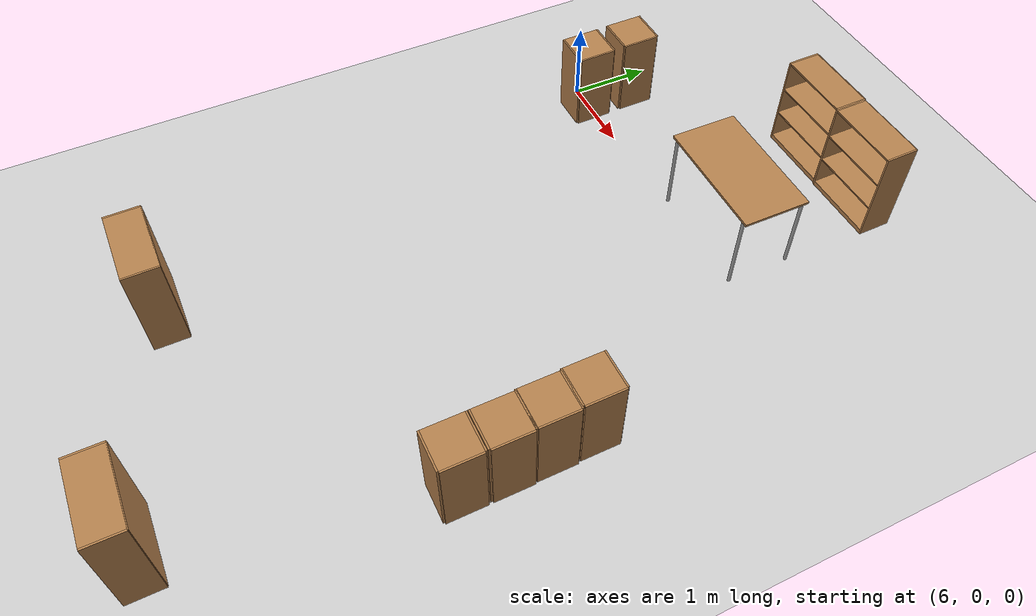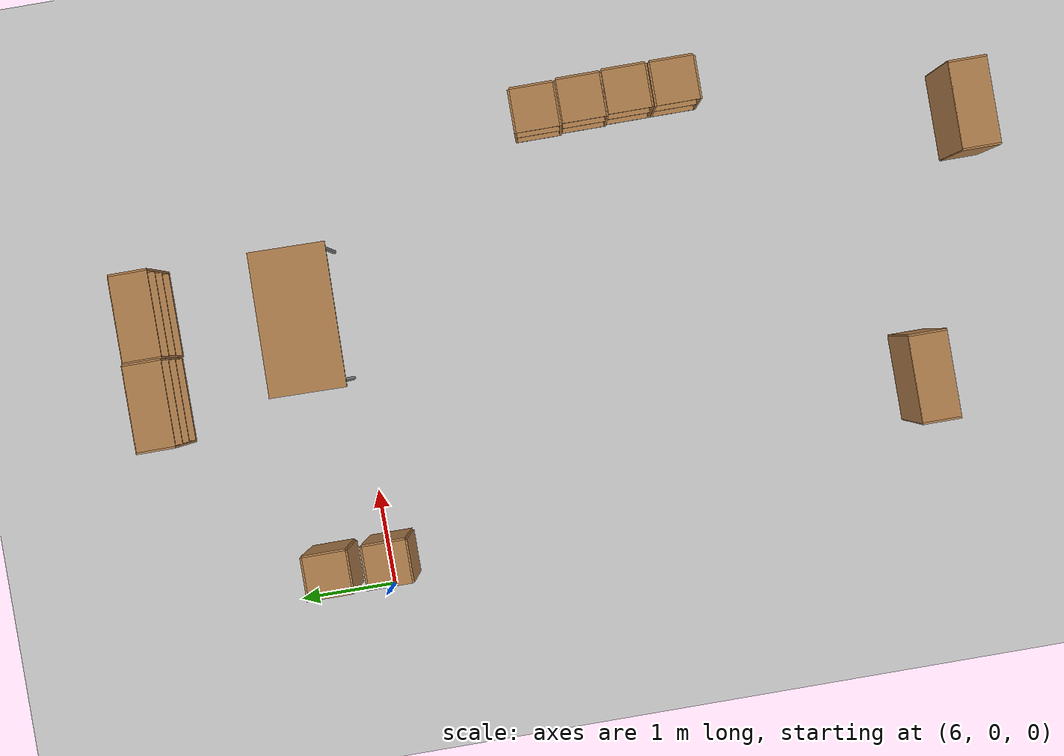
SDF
<sdf version="1.6">
 <world name="default">
  <model name="ground_plane">
   <static>1</static>
   <link name="link">
    <collision name="collision">
     <geometry><plane><normal>0 0 1</normal><size>100 100</size></plane></geometry>
     <surface><friction><ode><mu>100</mu><mu2>50</mu2></ode></friction></surface>
    </collision>
    <visual name="visual">
     <cast_shadows>0</cast_shadows>
     <geometry><plane><normal>0 0 1</normal><size>100 100</size></plane></geometry>
     <material>
      <script><uri>file://media/materials/scripts/gazebo.material</uri><name>Gazebo/Grey</name></script>
     </material>
    </visual>
   </link>
  </model>
  <model name="table_2">
   <static>1</static>
   <link name="link">
    <collision name="surface">
     <pose>0 0 1 0 -0 0</pose>
     <geometry><box><size>1.5 0.8 0.03</size></box></geometry>
     <surface><friction><ode><mu>0.6</mu><mu2>0.6</mu2></ode></friction></surface>
    </collision>
    <visual name="visual1">
     <pose>0 0 1 0 -0 0</pose>
     <geometry><box><size>1.5 0.8 0.03</size></box></geometry>
     <material>
      <script><uri>file://media/materials/scripts/gazebo.material</uri><name>Gazebo/Wood</name></script>
     </material>
    </visual>
    <collision name="front_left_leg">
     <pose>0.68 0.38 0.5 0 -0 0</pose>
     <geometry><cylinder><radius>0.02</radius><length>1</length></cylinder></geometry>
    </collision>
    <visual name="front_left_leg">
     <pose>0.68 0.38 0.5 0 -0 0</pose>
     <geometry><cylinder><radius>0.02</radius><length>1</length></cylinder></geometry>
     <material>
      <script><uri>file://media/materials/scripts/gazebo.material</uri><name>Gazebo/Grey</name></script>
     </material>
    </visual>
    <collision name="front_right_leg">
     <pose>0.68 -0.38 0.5 0 -0 0</pose>
     <geometry><cylinder><radius>0.02</radius><length>1</length></cylinder></geometry>
    </collision>
    <visual name="front_right_leg">
     <pose>0.68 -0.38 0.5 0 -0 0</pose>
     <geometry><cylinder><radius>0.02</radius><length>1</length></cylinder></geometry>
     <material>
      <script><uri>file://media/materials/scripts/gazebo.material</uri><name>Gazebo/Grey</name></script>
     </material>
    </visual>
    <collision name="back_right_leg">
     <pose>-0.68 -0.38 0.5 0 -0 0</pose>
     <geometry><cylinder><radius>0.02</radius><length>1</length></cylinder></geometry>
    </collision>
    <visual name="back_right_leg">
     <pose>-0.68 -0.38 0.5 0 -0 0</pose>
     <geometry><cylinder><radius>0.02</radius><length>1</length></cylinder></geometry>
     <material>
      <script><uri>file://media/materials/scripts/gazebo.material</uri><name>Gazebo/Grey</name></script>
     </material>
    </visual>
    <collision name="back_left_leg">
     <pose>-0.68 0.38 0.5 0 -0 0</pose>
     <geometry><cylinder><radius>0.02</radius><length>1</length></cylinder></geometry>
    </collision>
    <visual name="back_left_leg">
     <pose>-0.68 0.38 0.5 0 -0 0</pose>
     <geometry><cylinder><radius>0.02</radius><length>1</length></cylinder></geometry>
     <material>
      <script><uri>file://media/materials/scripts/gazebo.material</uri><name>Gazebo/Grey</name></script>
     </material>
    </visual>
   </link>
   <pose>8.91481 0.43197 0 0 -0 3.12562</pose>
  </model>
  <model name="bookshelf_clone_clone">
   <static>1</static>
   <link name="link">
    <inertial><mass>1</mass></inertial>
    <collision name="back">
     <pose>0 0.005 0.6 0 -0 0</pose>
     <geometry><box><size>0.9 0.01 1.2</size></box></geometry>
    </collision>
    <visual name="visual1">
     <pose>0 0.005 0.6 0 -0 0</pose>
     <geometry><box><size>0.9 0.01 1.2</size></box></geometry>
     <material>
      <script><uri>file://media/materials/scripts/gazebo.material</uri><name>Gazebo/Wood</name></script>
     </material>
    </visual>
    <collision name="left_side">
     <pose>0.45 -0.195 0.6 0 -0 0</pose>
     <geometry><box><size>0.02 0.4 1.2</size></box></geometry>
    </collision>
    <visual name="visual2">
     <pose>0.45 -0.195 0.6 0 -0 0</pose>
     <geometry><box><size>0.02 0.4 1.2</size></box></geometry>
     <material>
      <script><uri>file://media/materials/scripts/gazebo.material</uri><name>Gazebo/Wood</name></script>
     </material>
    </visual>
    <collision name="right_side">
     <pose>-0.45 -0.195 0.6 0 -0 0</pose>
     <geometry><box><size>0.02 0.4 1.2</size></box></geometry>
    </collision>
    <visual name="visual3">
     <pose>-0.45 -0.195 0.6 0 -0 0</pose>
     <geometry><box><size>0.02 0.4 1.2</size></box></geometry>
     <material>
      <script><uri>file://media/materials/scripts/gazebo.material</uri><name>Gazebo/Wood</name></script>
     </material>
    </visual>
    <collision name="bottom">
     <pose>0 -0.195 0.03 0 -0 0</pose>
     <geometry><box><size>0.88 0.4 0.06</size></box></geometry>
    </collision>
    <visual name="visual4">
     <pose>0 -0.195 0.03 0 -0 0</pose>
     <geometry><box><size>0.88 0.4 0.06</size></box></geometry>
     <material>
      <script><uri>file://media/materials/scripts/gazebo.material</uri><name>Gazebo/Wood</name></script>
     </material>
    </visual>
    <collision name="top">
     <pose>0 -0.195 1.19 0 -0 0</pose>
     <geometry><box><size>0.88 0.4 0.02</size></box></geometry>
    </collision>
    <visual name="visual5">
     <pose>0 -0.195 1.19 0 -0 0</pose>
     <geometry><box><size>0.88 0.4 0.02</size></box></geometry>
     <material>
      <script><uri>file://media/materials/scripts/gazebo.material</uri><name>Gazebo/Wood</name></script>
     </material>
    </visual>
    <collision name="low_shelf">
     <pose>0 -0.195 0.43 0 -0 0</pose>
     <geometry><box><size>0.88 0.4 0.02</size></box></geometry>
    </collision>
    <visual name="visual6">
     <pose>0 -0.195 0.43 0 -0 0</pose>
     <geometry><box><size>0.88 0.4 0.02</size></box></geometry>
     <material>
      <script><uri>file://media/materials/scripts/gazebo.material</uri><name>Gazebo/Wood</name></script>
     </material>
    </visual>
    <collision name="high_shelf">
     <pose>0 -0.195 0.8 0 -0 0</pose>
     <geometry><box><size>0.88 0.4 0.02</size></box></geometry>
    </collision>
    <visual name="visual7">
     <pose>0 -0.195 0.8 0 -0 0</pose>
     <geometry><box><size>0.88 0.4 0.02</size></box></geometry>
     <material>
      <script><uri>file://media/materials/scripts/gazebo.material</uri><name>Gazebo/Wood</name></script>
     </material>
    </visual>
   </link>
   <pose>8.30263 2.2218 0 0 -0 0</pose>
  </model>
  <model name="cabinet_clone">
   <static>1</static>
   <link name="cabinet_bottom_plate">
    <inertial>
     <pose>0 0 -1 0 -0 0</pose>
     <inertia><ixx>2.05</ixx><ixy>0</ixy><ixz>0</ixz><iyy>2.05</iyy><iyz>0</iyz><izz>2.05</izz></inertia>
     <mass>25</mass>
    </inertial>
    <collision name="cabinet_bottom_plate_geom">
     <pose>0 0 0.01 0 -0 0</pose>
     <geometry><box><size>0.45 0.45 0.02</size></box></geometry>
    </collision>
    <visual name="cabinet_bottom_plate_geom_visual">
     <pose>0 0 0.01 0 -0 0</pose>
     <geometry><box><size>0.45 0.45 0.02</size></box></geometry>
     <material>
      <script><uri>file://media/materials/scripts/gazebo.material</uri><name>Gazebo/Wood</name></script>
     </material>
    </visual>
    <collision name="cabinet_bottom_plate_geom_cabinet_back_plate">
     <pose>0.235 0 0.51 0 -0 0</pose>
     <geometry><box><size>0.02 0.45 1.02</size></box></geometry>
    </collision>
    <visual name="cabinet_bottom_plate_geom_cabinet_back_plate_visual">
     <pose>0.235 0 0.51 0 -0 0</pose>
     <geometry><box><size>0.02 0.45 1.02</size></box></geometry>
     <material>
      <script><uri>file://media/materials/scripts/gazebo.material</uri><name>Gazebo/Wood</name></script>
     </material>
    </visual>
    <collision name="cabinet_bottom_plate_geom_cabinet_left_plate">
     <pose>0 0.235 0.51 0 -0 0</pose>
     <geometry><box><size>0.45 0.02 1.02</size></box></geometry>
    </collision>
    <visual name="cabinet_bottom_plate_geom_cabinet_left_plate_visual">
     <pose>0 0.235 0.51 0 -0 0</pose>
     <geometry><box><size>0.45 0.02 1.02</size></box></geometry>
     <material>
      <script><uri>file://media/materials/scripts/gazebo.material</uri><name>Gazebo/Wood</name></script>
     </material>
    </visual>
    <collision name="cabinet_bottom_plate_geom_cabinet_middle_plate">
     <pose>0 0 0.51 0 -0 0</pose>
     <geometry><box><size>0.45 0.45 0.02</size></box></geometry>
    </collision>
    <visual name="cabinet_bottom_plate_geom_cabinet_middle_plate_visual">
     <pose>0 0 0.51 0 -0 0</pose>
     <geometry><box><size>0.45 0.45 0.02</size></box></geometry>
     <material>
      <script><uri>file://media/materials/scripts/gazebo.material</uri><name>Gazebo/Wood</name></script>
     </material>
    </visual>
    <collision name="cabinet_bottom_plate_geom_cabinet_right_plate">
     <pose>0 -0.235 0.51 0 -0 0</pose>
     <geometry><box><size>0.45 0.02 1.02</size></box></geometry>
    </collision>
    <visual name="cabinet_bottom_plate_geom_cabinet_right_plate_visual">
     <pose>0 -0.235 0.51 0 -0 0</pose>
     <geometry><box><size>0.45 0.02 1.02</size></box></geometry>
     <material>
      <script><uri>file://media/materials/scripts/gazebo.material</uri><name>Gazebo/Wood</name></script>
     </material>
    </visual>
    <collision name="cabinet_bottom_plate_geom_cabinet_top_plate">
     <pose>0 0 1.01 0 -0 0</pose>
     <geometry><box><size>0.45 0.45 0.02</size></box></geometry>
    </collision>
    <visual name="cabinet_bottom_plate_geom_cabinet_top_plate_visual">
     <pose>0 0 1.01 0 -0 0</pose>
     <geometry><box><size>0.45 0.45 0.02</size></box></geometry>
     <material>
      <script><uri>file://media/materials/scripts/gazebo.material</uri><name>Gazebo/Wood</name></script>
     </material>
    </visual>
   </link>
   <pose>10.6304 -2.31194 0 0 -0 0</pose>
  </model>
  <model name="cabinet_clone_0">
   <static>1</static>
   <link name="cabinet_bottom_plate">
    <inertial>
     <pose>0 0 -1 0 -0 0</pose>
     <inertia><ixx>2.05</ixx><ixy>0</ixy><ixz>0</ixz><iyy>2.05</iyy><iyz>0</iyz><izz>2.05</izz></inertia>
     <mass>25</mass>
    </inertial>
    <collision name="cabinet_bottom_plate_geom">
     <pose>0 0 0.01 0 -0 0</pose>
     <geometry><box><size>0.45 0.45 0.02</size></box></geometry>
    </collision>
    <visual name="cabinet_bottom_plate_geom_visual">
     <pose>0 0 0.01 0 -0 0</pose>
     <geometry><box><size>0.45 0.45 0.02</size></box></geometry>
     <material>
      <script><uri>file://media/materials/scripts/gazebo.material</uri><name>Gazebo/Wood</name></script>
     </material>
    </visual>
    <collision name="cabinet_bottom_plate_geom_cabinet_back_plate">
     <pose>0.235 0 0.51 0 -0 0</pose>
     <geometry><box><size>0.02 0.45 1.02</size></box></geometry>
    </collision>
    <visual name="cabinet_bottom_plate_geom_cabinet_back_plate_visual">
     <pose>0.235 0 0.51 0 -0 0</pose>
     <geometry><box><size>0.02 0.45 1.02</size></box></geometry>
     <material>
      <script><uri>file://media/materials/scripts/gazebo.material</uri><name>Gazebo/Wood</name></script>
     </material>
    </visual>
    <collision name="cabinet_bottom_plate_geom_cabinet_left_plate">
     <pose>0 0.235 0.51 0 -0 0</pose>
     <geometry><box><size>0.45 0.02 1.02</size></box></geometry>
    </collision>
    <visual name="cabinet_bottom_plate_geom_cabinet_left_plate_visual">
     <pose>0 0.235 0.51 0 -0 0</pose>
     <geometry><box><size>0.45 0.02 1.02</size></box></geometry>
     <material>
      <script><uri>file://media/materials/scripts/gazebo.material</uri><name>Gazebo/Wood</name></script>
     </material>
    </visual>
    <collision name="cabinet_bottom_plate_geom_cabinet_middle_plate">
     <pose>0 0 0.51 0 -0 0</pose>
     <geometry><box><size>0.45 0.45 0.02</size></box></geometry>
    </collision>
    <visual name="cabinet_bottom_plate_geom_cabinet_middle_plate_visual">
     <pose>0 0 0.51 0 -0 0</pose>
     <geometry><box><size>0.45 0.45 0.02</size></box></geometry>
     <material>
      <script><uri>file://media/materials/scripts/gazebo.material</uri><name>Gazebo/Wood</name></script>
     </material>
    </visual>
    <collision name="cabinet_bottom_plate_geom_cabinet_right_plate">
     <pose>0 -0.235 0.51 0 -0 0</pose>
     <geometry><box><size>0.45 0.02 1.02</size></box></geometry>
    </collision>
    <visual name="cabinet_bottom_plate_geom_cabinet_right_plate_visual">
     <pose>0 -0.235 0.51 0 -0 0</pose>
     <geometry><box><size>0.45 0.02 1.02</size></box></geometry>
     <material>
      <script><uri>file://media/materials/scripts/gazebo.material</uri><name>Gazebo/Wood</name></script>
     </material>
    </visual>
    <collision name="cabinet_bottom_plate_geom_cabinet_top_plate">
     <pose>0 0 1.01 0 -0 0</pose>
     <geometry><box><size>0.45 0.45 0.02</size></box></geometry>
    </collision>
    <visual name="cabinet_bottom_plate_geom_cabinet_top_plate_visual">
     <pose>0 0 1.01 0 -0 0</pose>
     <geometry><box><size>0.45 0.45 0.02</size></box></geometry>
     <material>
      <script><uri>file://media/materials/scripts/gazebo.material</uri><name>Gazebo/Wood</name></script>
     </material>
    </visual>
   </link>
   <pose>10.6472 -2.79516 0 0 -0 0</pose>
  </model>
  <model name="cabinet_clone_1">
   <static>1</static>
   <link name="cabinet_bottom_plate">
    <inertial>
     <pose>0 0 -1 0 -0 0</pose>
     <inertia><ixx>2.05</ixx><ixy>0</ixy><ixz>0</ixz><iyy>2.05</iyy><iyz>0</iyz><izz>2.05</izz></inertia>
     <mass>25</mass>
    </inertial>
    <collision name="cabinet_bottom_plate_geom">
     <pose>0 0 0.01 0 -0 0</pose>
     <geometry><box><size>0.45 0.45 0.02</size></box></geometry>
    </collision>
    <visual name="cabinet_bottom_plate_geom_visual">
     <pose>0 0 0.01 0 -0 0</pose>
     <geometry><box><size>0.45 0.45 0.02</size></box></geometry>
     <material>
      <script><uri>file://media/materials/scripts/gazebo.material</uri><name>Gazebo/Wood</name></script>
     </material>
    </visual>
    <collision name="cabinet_bottom_plate_geom_cabinet_back_plate">
     <pose>0.235 0 0.51 0 -0 0</pose>
     <geometry><box><size>0.02 0.45 1.02</size></box></geometry>
    </collision>
    <visual name="cabinet_bottom_plate_geom_cabinet_back_plate_visual">
     <pose>0.235 0 0.51 0 -0 0</pose>
     <geometry><box><size>0.02 0.45 1.02</size></box></geometry>
     <material>
      <script><uri>file://media/materials/scripts/gazebo.material</uri><name>Gazebo/Wood</name></script>
     </material>
    </visual>
    <collision name="cabinet_bottom_plate_geom_cabinet_left_plate">
     <pose>0 0.235 0.51 0 -0 0</pose>
     <geometry><box><size>0.45 0.02 1.02</size></box></geometry>
    </collision>
    <visual name="cabinet_bottom_plate_geom_cabinet_left_plate_visual">
     <pose>0 0.235 0.51 0 -0 0</pose>
     <geometry><box><size>0.45 0.02 1.02</size></box></geometry>
     <material>
      <script><uri>file://media/materials/scripts/gazebo.material</uri><name>Gazebo/Wood</name></script>
     </material>
    </visual>
    <collision name="cabinet_bottom_plate_geom_cabinet_middle_plate">
     <pose>0 0 0.51 0 -0 0</pose>
     <geometry><box><size>0.45 0.45 0.02</size></box></geometry>
    </collision>
    <visual name="cabinet_bottom_plate_geom_cabinet_middle_plate_visual">
     <pose>0 0 0.51 0 -0 0</pose>
     <geometry><box><size>0.45 0.45 0.02</size></box></geometry>
     <material>
      <script><uri>file://media/materials/scripts/gazebo.material</uri><name>Gazebo/Wood</name></script>
     </material>
    </visual>
    <collision name="cabinet_bottom_plate_geom_cabinet_right_plate">
     <pose>0 -0.235 0.51 0 -0 0</pose>
     <geometry><box><size>0.45 0.02 1.02</size></box></geometry>
    </collision>
    <visual name="cabinet_bottom_plate_geom_cabinet_right_plate_visual">
     <pose>0 -0.235 0.51 0 -0 0</pose>
     <geometry><box><size>0.45 0.02 1.02</size></box></geometry>
     <material>
      <script><uri>file://media/materials/scripts/gazebo.material</uri><name>Gazebo/Wood</name></script>
     </material>
    </visual>
    <collision name="cabinet_bottom_plate_geom_cabinet_top_plate">
     <pose>0 0 1.01 0 -0 0</pose>
     <geometry><box><size>0.45 0.45 0.02</size></box></geometry>
    </collision>
    <visual name="cabinet_bottom_plate_geom_cabinet_top_plate_visual">
     <pose>0 0 1.01 0 -0 0</pose>
     <geometry><box><size>0.45 0.45 0.02</size></box></geometry>
     <material>
      <script><uri>file://media/materials/scripts/gazebo.material</uri><name>Gazebo/Wood</name></script>
     </material>
    </visual>
   </link>
   <pose>10.6599 -3.26908 0 0 -0 0</pose>
  </model>
  <model name="cabinet_clone_2">
   <static>1</static>
   <link name="cabinet_bottom_plate">
    <inertial>
     <pose>0 0 -1 0 -0 0</pose>
     <inertia><ixx>2.05</ixx><ixy>0</ixy><ixz>0</ixz><iyy>2.05</iyy><iyz>0</iyz><izz>2.05</izz></inertia>
     <mass>25</mass>
    </inertial>
    <collision name="cabinet_bottom_plate_geom">
     <pose>0 0 0.01 0 -0 0</pose>
     <geometry><box><size>0.45 0.45 0.02</size></box></geometry>
    </collision>
    <visual name="cabinet_bottom_plate_geom_visual">
     <pose>0 0 0.01 0 -0 0</pose>
     <geometry><box><size>0.45 0.45 0.02</size></box></geometry>
     <material>
      <script><uri>file://media/materials/scripts/gazebo.material</uri><name>Gazebo/Wood</name></script>
     </material>
    </visual>
    <collision name="cabinet_bottom_plate_geom_cabinet_back_plate">
     <pose>0.235 0 0.51 0 -0 0</pose>
     <geometry><box><size>0.02 0.45 1.02</size></box></geometry>
    </collision>
    <visual name="cabinet_bottom_plate_geom_cabinet_back_plate_visual">
     <pose>0.235 0 0.51 0 -0 0</pose>
     <geometry><box><size>0.02 0.45 1.02</size></box></geometry>
     <material>
      <script><uri>file://media/materials/scripts/gazebo.material</uri><name>Gazebo/Wood</name></script>
     </material>
    </visual>
    <collision name="cabinet_bottom_plate_geom_cabinet_left_plate">
     <pose>0 0.235 0.51 0 -0 0</pose>
     <geometry><box><size>0.45 0.02 1.02</size></box></geometry>
    </collision>
    <visual name="cabinet_bottom_plate_geom_cabinet_left_plate_visual">
     <pose>0 0.235 0.51 0 -0 0</pose>
     <geometry><box><size>0.45 0.02 1.02</size></box></geometry>
     <material>
      <script><uri>file://media/materials/scripts/gazebo.material</uri><name>Gazebo/Wood</name></script>
     </material>
    </visual>
    <collision name="cabinet_bottom_plate_geom_cabinet_middle_plate">
     <pose>0 0 0.51 0 -0 0</pose>
     <geometry><box><size>0.45 0.45 0.02</size></box></geometry>
    </collision>
    <visual name="cabinet_bottom_plate_geom_cabinet_middle_plate_visual">
     <pose>0 0 0.51 0 -0 0</pose>
     <geometry><box><size>0.45 0.45 0.02</size></box></geometry>
     <material>
      <script><uri>file://media/materials/scripts/gazebo.material</uri><name>Gazebo/Wood</name></script>
     </material>
    </visual>
    <collision name="cabinet_bottom_plate_geom_cabinet_right_plate">
     <pose>0 -0.235 0.51 0 -0 0</pose>
     <geometry><box><size>0.45 0.02 1.02</size></box></geometry>
    </collision>
    <visual name="cabinet_bottom_plate_geom_cabinet_right_plate_visual">
     <pose>0 -0.235 0.51 0 -0 0</pose>
     <geometry><box><size>0.45 0.02 1.02</size></box></geometry>
     <material>
      <script><uri>file://media/materials/scripts/gazebo.material</uri><name>Gazebo/Wood</name></script>
     </material>
    </visual>
    <collision name="cabinet_bottom_plate_geom_cabinet_top_plate">
     <pose>0 0 1.01 0 -0 0</pose>
     <geometry><box><size>0.45 0.45 0.02</size></box></geometry>
    </collision>
    <visual name="cabinet_bottom_plate_geom_cabinet_top_plate_visual">
     <pose>0 0 1.01 0 -0 0</pose>
     <geometry><box><size>0.45 0.45 0.02</size></box></geometry>
     <material>
      <script><uri>file://media/materials/scripts/gazebo.material</uri><name>Gazebo/Wood</name></script>
     </material>
    </visual>
   </link>
   <pose>10.6607 -3.76632 0 0 -0 0</pose>
  </model>
  <model name="bookshelf_clone_clone_clone">
   <static>1</static>
   <link name="link">
    <inertial><mass>1</mass></inertial>
    <collision name="back">
     <pose>0 0.005 0.6 0 -0 0</pose>
     <geometry><box><size>0.9 0.01 1.2</size></box></geometry>
    </collision>
    <visual name="visual1">
     <pose>0 0.005 0.6 0 -0 0</pose>
     <geometry><box><size>0.9 0.01 1.2</size></box></geometry>
     <material>
      <script><uri>file://media/materials/scripts/gazebo.material</uri><name>Gazebo/Wood</name></script>
     </material>
    </visual>
    <collision name="left_side">
     <pose>0.45 -0.195 0.6 0 -0 0</pose>
     <geometry><box><size>0.02 0.4 1.2</size></box></geometry>
    </collision>
    <visual name="visual2">
     <pose>0.45 -0.195 0.6 0 -0 0</pose>
     <geometry><box><size>0.02 0.4 1.2</size></box></geometry>
     <material>
      <script><uri>file://media/materials/scripts/gazebo.material</uri><name>Gazebo/Wood</name></script>
     </material>
    </visual>
    <collision name="right_side">
     <pose>-0.45 -0.195 0.6 0 -0 0</pose>
     <geometry><box><size>0.02 0.4 1.2</size></box></geometry>
    </collision>
    <visual name="visual3">
     <pose>-0.45 -0.195 0.6 0 -0 0</pose>
     <geometry><box><size>0.02 0.4 1.2</size></box></geometry>
     <material>
      <script><uri>file://media/materials/scripts/gazebo.material</uri><name>Gazebo/Wood</name></script>
     </material>
    </visual>
    <collision name="bottom">
     <pose>0 -0.195 0.03 0 -0 0</pose>
     <geometry><box><size>0.88 0.4 0.06</size></box></geometry>
    </collision>
    <visual name="visual4">
     <pose>0 -0.195 0.03 0 -0 0</pose>
     <geometry><box><size>0.88 0.4 0.06</size></box></geometry>
     <material>
      <script><uri>file://media/materials/scripts/gazebo.material</uri><name>Gazebo/Wood</name></script>
     </material>
    </visual>
    <collision name="top">
     <pose>0 -0.195 1.19 0 -0 0</pose>
     <geometry><box><size>0.88 0.4 0.02</size></box></geometry>
    </collision>
    <visual name="visual5">
     <pose>0 -0.195 1.19 0 -0 0</pose>
     <geometry><box><size>0.88 0.4 0.02</size></box></geometry>
     <material>
      <script><uri>file://media/materials/scripts/gazebo.material</uri><name>Gazebo/Wood</name></script>
     </material>
    </visual>
    <collision name="low_shelf">
     <pose>0 -0.195 0.43 0 -0 0</pose>
     <geometry><box><size>0.88 0.4 0.02</size></box></geometry>
    </collision>
    <visual name="visual6">
     <pose>0 -0.195 0.43 0 -0 0</pose>
     <geometry><box><size>0.88 0.4 0.02</size></box></geometry>
     <material>
      <script><uri>file://media/materials/scripts/gazebo.material</uri><name>Gazebo/Wood</name></script>
     </material>
    </visual>
    <collision name="high_shelf">
     <pose>0 -0.195 0.8 0 -0 0</pose>
     <geometry><box><size>0.88 0.4 0.02</size></box></geometry>
    </collision>
    <visual name="visual7">
     <pose>0 -0.195 0.8 0 -0 0</pose>
     <geometry><box><size>0.88 0.4 0.02</size></box></geometry>
     <material>
      <script><uri>file://media/materials/scripts/gazebo.material</uri><name>Gazebo/Wood</name></script>
     </material>
    </visual>
   </link>
   <pose>9.21827 2.20833 0 0 -0 0</pose>
  </model>
  <model name="bookshelf_clone_clone_clone_0">
   <static>1</static>
   <link name="link">
    <inertial><mass>1</mass></inertial>
    <collision name="back">
     <pose>0 0.005 0.6 0 -0 0</pose>
     <geometry><box><size>0.9 0.01 1.2</size></box></geometry>
    </collision>
    <visual name="visual1">
     <pose>0 0.005 0.6 0 -0 0</pose>
     <geometry><box><size>0.9 0.01 1.2</size></box></geometry>
     <material>
      <script><uri>file://media/materials/scripts/gazebo.material</uri><name>Gazebo/Wood</name></script>
     </material>
    </visual>
    <collision name="left_side">
     <pose>0.45 -0.195 0.6 0 -0 0</pose>
     <geometry><box><size>0.02 0.4 1.2</size></box></geometry>
    </collision>
    <visual name="visual2">
     <pose>0.45 -0.195 0.6 0 -0 0</pose>
     <geometry><box><size>0.02 0.4 1.2</size></box></geometry>
     <material>
      <script><uri>file://media/materials/scripts/gazebo.material</uri><name>Gazebo/Wood</name></script>
     </material>
    </visual>
    <collision name="right_side">
     <pose>-0.45 -0.195 0.6 0 -0 0</pose>
     <geometry><box><size>0.02 0.4 1.2</size></box></geometry>
    </collision>
    <visual name="visual3">
     <pose>-0.45 -0.195 0.6 0 -0 0</pose>
     <geometry><box><size>0.02 0.4 1.2</size></box></geometry>
     <material>
      <script><uri>file://media/materials/scripts/gazebo.material</uri><name>Gazebo/Wood</name></script>
     </material>
    </visual>
    <collision name="bottom">
     <pose>0 -0.195 0.03 0 -0 0</pose>
     <geometry><box><size>0.88 0.4 0.06</size></box></geometry>
    </collision>
    <visual name="visual4">
     <pose>0 -0.195 0.03 0 -0 0</pose>
     <geometry><box><size>0.88 0.4 0.06</size></box></geometry>
     <material>
      <script><uri>file://media/materials/scripts/gazebo.material</uri><name>Gazebo/Wood</name></script>
     </material>
    </visual>
    <collision name="top">
     <pose>0 -0.195 1.19 0 -0 0</pose>
     <geometry><box><size>0.88 0.4 0.02</size></box></geometry>
    </collision>
    <visual name="visual5">
     <pose>0 -0.195 1.19 0 -0 0</pose>
     <geometry><box><size>0.88 0.4 0.02</size></box></geometry>
     <material>
      <script><uri>file://media/materials/scripts/gazebo.material</uri><name>Gazebo/Wood</name></script>
     </material>
    </visual>
    <collision name="low_shelf">
     <pose>0 -0.195 0.43 0 -0 0</pose>
     <geometry><box><size>0.88 0.4 0.02</size></box></geometry>
    </collision>
    <visual name="visual6">
     <pose>0 -0.195 0.43 0 -0 0</pose>
     <geometry><box><size>0.88 0.4 0.02</size></box></geometry>
     <material>
      <script><uri>file://media/materials/scripts/gazebo.material</uri><name>Gazebo/Wood</name></script>
     </material>
    </visual>
    <collision name="high_shelf">
     <pose>0 -0.195 0.8 0 -0 0</pose>
     <geometry><box><size>0.88 0.4 0.02</size></box></geometry>
    </collision>
    <visual name="visual7">
     <pose>0 -0.195 0.8 0 -0 0</pose>
     <geometry><box><size>0.88 0.4 0.02</size></box></geometry>
     <material>
      <script><uri>file://media/materials/scripts/gazebo.material</uri><name>Gazebo/Wood</name></script>
     </material>
    </visual>
   </link>
   <pose>9.91155 -6.4951 0 0 -0 0</pose>
  </model>
  <model name="cabinet_clone_3_clone_2">
   <static>1</static>
   <link name="cabinet_bottom_plate">
    <inertial>
     <pose>0 0 -1 0 -0 0</pose>
     <inertia><ixx>2.05</ixx><ixy>0</ixy><ixz>0</ixz><iyy>2.05</iyy><iyz>0</iyz><izz>2.05</izz></inertia>
     <mass>25</mass>
    </inertial>
    <collision name="cabinet_bottom_plate_geom">
     <pose>0 0 0.01 0 -0 0</pose>
     <geometry><box><size>0.45 0.45 0.02</size></box></geometry>
    </collision>
    <visual name="cabinet_bottom_plate_geom_visual">
     <pose>0 0 0.01 0 -0 0</pose>
     <geometry><box><size>0.45 0.45 0.02</size></box></geometry>
     <material>
      <script><uri>file://media/materials/scripts/gazebo.material</uri><name>Gazebo/Wood</name></script>
     </material>
    </visual>
    <collision name="cabinet_bottom_plate_geom_cabinet_back_plate">
     <pose>0.235 0 0.51 0 -0 0</pose>
     <geometry><box><size>0.02 0.45 1.02</size></box></geometry>
    </collision>
    <visual name="cabinet_bottom_plate_geom_cabinet_back_plate_visual">
     <pose>0.235 0 0.51 0 -0 0</pose>
     <geometry><box><size>0.02 0.45 1.02</size></box></geometry>
     <material>
      <script><uri>file://media/materials/scripts/gazebo.material</uri><name>Gazebo/Wood</name></script>
     </material>
    </visual>
    <collision name="cabinet_bottom_plate_geom_cabinet_left_plate">
     <pose>0 0.235 0.51 0 -0 0</pose>
     <geometry><box><size>0.45 0.02 1.02</size></box></geometry>
    </collision>
    <visual name="cabinet_bottom_plate_geom_cabinet_left_plate_visual">
     <pose>0 0.235 0.51 0 -0 0</pose>
     <geometry><box><size>0.45 0.02 1.02</size></box></geometry>
     <material>
      <script><uri>file://media/materials/scripts/gazebo.material</uri><name>Gazebo/Wood</name></script>
     </material>
    </visual>
    <collision name="cabinet_bottom_plate_geom_cabinet_middle_plate">
     <pose>0 0 0.51 0 -0 0</pose>
     <geometry><box><size>0.45 0.45 0.02</size></box></geometry>
    </collision>
    <visual name="cabinet_bottom_plate_geom_cabinet_middle_plate_visual">
     <pose>0 0 0.51 0 -0 0</pose>
     <geometry><box><size>0.45 0.45 0.02</size></box></geometry>
     <material>
      <script><uri>file://media/materials/scripts/gazebo.material</uri><name>Gazebo/Wood</name></script>
     </material>
    </visual>
    <collision name="cabinet_bottom_plate_geom_cabinet_right_plate">
     <pose>0 -0.235 0.51 0 -0 0</pose>
     <geometry><box><size>0.45 0.02 1.02</size></box></geometry>
    </collision>
    <visual name="cabinet_bottom_plate_geom_cabinet_right_plate_visual">
     <pose>0 -0.235 0.51 0 -0 0</pose>
     <geometry><box><size>0.45 0.02 1.02</size></box></geometry>
     <material>
      <script><uri>file://media/materials/scripts/gazebo.material</uri><name>Gazebo/Wood</name></script>
     </material>
    </visual>
    <collision name="cabinet_bottom_plate_geom_cabinet_top_plate">
     <pose>0 0 1.01 0 -0 0</pose>
     <geometry><box><size>0.45 0.45 0.02</size></box></geometry>
    </collision>
    <visual name="cabinet_bottom_plate_geom_cabinet_top_plate_visual">
     <pose>0 0 1.01 0 -0 0</pose>
     <geometry><box><size>0.45 0.45 0.02</size></box></geometry>
     <material>
      <script><uri>file://media/materials/scripts/gazebo.material</uri><name>Gazebo/Wood</name></script>
     </material>
    </visual>
   </link>
   <pose>6.30448 -0.050904 0 0 -0 0</pose>
  </model>
  <model name="cabinet_clone_3_clone_3">
   <static>1</static>
   <link name="cabinet_bottom_plate">
    <inertial>
     <pose>0 0 -1 0 -0 0</pose>
     <inertia><ixx>2.05</ixx><ixy>0</ixy><ixz>0</ixz><iyy>2.05</iyy><iyz>0</iyz><izz>2.05</izz></inertia>
     <mass>25</mass>
    </inertial>
    <collision name="cabinet_bottom_plate_geom">
     <pose>0 0 0.01 0 -0 0</pose>
     <geometry><box><size>0.45 0.45 0.02</size></box></geometry>
    </collision>
    <visual name="cabinet_bottom_plate_geom_visual">
     <pose>0 0 0.01 0 -0 0</pose>
     <geometry><box><size>0.45 0.45 0.02</size></box></geometry>
     <material>
      <script><uri>file://media/materials/scripts/gazebo.material</uri><name>Gazebo/Wood</name></script>
     </material>
    </visual>
    <collision name="cabinet_bottom_plate_geom_cabinet_back_plate">
     <pose>0.235 0 0.51 0 -0 0</pose>
     <geometry><box><size>0.02 0.45 1.02</size></box></geometry>
    </collision>
    <visual name="cabinet_bottom_plate_geom_cabinet_back_plate_visual">
     <pose>0.235 0 0.51 0 -0 0</pose>
     <geometry><box><size>0.02 0.45 1.02</size></box></geometry>
     <material>
      <script><uri>file://media/materials/scripts/gazebo.material</uri><name>Gazebo/Wood</name></script>
     </material>
    </visual>
    <collision name="cabinet_bottom_plate_geom_cabinet_left_plate">
     <pose>0 0.235 0.51 0 -0 0</pose>
     <geometry><box><size>0.45 0.02 1.02</size></box></geometry>
    </collision>
    <visual name="cabinet_bottom_plate_geom_cabinet_left_plate_visual">
     <pose>0 0.235 0.51 0 -0 0</pose>
     <geometry><box><size>0.45 0.02 1.02</size></box></geometry>
     <material>
      <script><uri>file://media/materials/scripts/gazebo.material</uri><name>Gazebo/Wood</name></script>
     </material>
    </visual>
    <collision name="cabinet_bottom_plate_geom_cabinet_middle_plate">
     <pose>0 0 0.51 0 -0 0</pose>
     <geometry><box><size>0.45 0.45 0.02</size></box></geometry>
    </collision>
    <visual name="cabinet_bottom_plate_geom_cabinet_middle_plate_visual">
     <pose>0 0 0.51 0 -0 0</pose>
     <geometry><box><size>0.45 0.45 0.02</size></box></geometry>
     <material>
      <script><uri>file://media/materials/scripts/gazebo.material</uri><name>Gazebo/Wood</name></script>
     </material>
    </visual>
    <collision name="cabinet_bottom_plate_geom_cabinet_right_plate">
     <pose>0 -0.235 0.51 0 -0 0</pose>
     <geometry><box><size>0.45 0.02 1.02</size></box></geometry>
    </collision>
    <visual name="cabinet_bottom_plate_geom_cabinet_right_plate_visual">
     <pose>0 -0.235 0.51 0 -0 0</pose>
     <geometry><box><size>0.45 0.02 1.02</size></box></geometry>
     <material>
      <script><uri>file://media/materials/scripts/gazebo.material</uri><name>Gazebo/Wood</name></script>
     </material>
    </visual>
    <collision name="cabinet_bottom_plate_geom_cabinet_top_plate">
     <pose>0 0 1.01 0 -0 0</pose>
     <geometry><box><size>0.45 0.45 0.02</size></box></geometry>
    </collision>
    <visual name="cabinet_bottom_plate_geom_cabinet_top_plate_visual">
     <pose>0 0 1.01 0 -0 0</pose>
     <geometry><box><size>0.45 0.45 0.02</size></box></geometry>
     <material>
      <script><uri>file://media/materials/scripts/gazebo.material</uri><name>Gazebo/Wood</name></script>
     </material>
    </visual>
   </link>
   <pose>6.297 0.567936 0 0 -0 0</pose>
  </model>
  <model name="bookshelf_clone_clone_clone_0_clone">
   <static>1</static>
   <link name="link">
    <inertial><mass>1</mass></inertial>
    <collision name="back">
     <pose>0 0.005 0.6 0 -0 0</pose>
     <geometry><box><size>0.9 0.01 1.2</size></box></geometry>
    </collision>
    <visual name="visual1">
     <pose>0 0.005 0.6 0 -0 0</pose>
     <geometry><box><size>0.9 0.01 1.2</size></box></geometry>
     <material>
      <script><uri>file://media/materials/scripts/gazebo.material</uri><name>Gazebo/Wood</name></script>
     </material>
    </visual>
    <collision name="left_side">
     <pose>0.45 -0.195 0.6 0 -0 0</pose>
     <geometry><box><size>0.02 0.4 1.2</size></box></geometry>
    </collision>
    <visual name="visual2">
     <pose>0.45 -0.195 0.6 0 -0 0</pose>
     <geometry><box><size>0.02 0.4 1.2</size></box></geometry>
     <material>
      <script><uri>file://media/materials/scripts/gazebo.material</uri><name>Gazebo/Wood</name></script>
     </material>
    </visual>
    <collision name="right_side">
     <pose>-0.45 -0.195 0.6 0 -0 0</pose>
     <geometry><box><size>0.02 0.4 1.2</size></box></geometry>
    </collision>
    <visual name="visual3">
     <pose>-0.45 -0.195 0.6 0 -0 0</pose>
     <geometry><box><size>0.02 0.4 1.2</size></box></geometry>
     <material>
      <script><uri>file://media/materials/scripts/gazebo.material</uri><name>Gazebo/Wood</name></script>
     </material>
    </visual>
    <collision name="bottom">
     <pose>0 -0.195 0.03 0 -0 0</pose>
     <geometry><box><size>0.88 0.4 0.06</size></box></geometry>
    </collision>
    <visual name="visual4">
     <pose>0 -0.195 0.03 0 -0 0</pose>
     <geometry><box><size>0.88 0.4 0.06</size></box></geometry>
     <material>
      <script><uri>file://media/materials/scripts/gazebo.material</uri><name>Gazebo/Wood</name></script>
     </material>
    </visual>
    <collision name="top">
     <pose>0 -0.195 1.19 0 -0 0</pose>
     <geometry><box><size>0.88 0.4 0.02</size></box></geometry>
    </collision>
    <visual name="visual5">
     <pose>0 -0.195 1.19 0 -0 0</pose>
     <geometry><box><size>0.88 0.4 0.02</size></box></geometry>
     <material>
      <script><uri>file://media/materials/scripts/gazebo.material</uri><name>Gazebo/Wood</name></script>
     </material>
    </visual>
    <collision name="low_shelf">
     <pose>0 -0.195 0.43 0 -0 0</pose>
     <geometry><box><size>0.88 0.4 0.02</size></box></geometry>
    </collision>
    <visual name="visual6">
     <pose>0 -0.195 0.43 0 -0 0</pose>
     <geometry><box><size>0.88 0.4 0.02</size></box></geometry>
     <material>
      <script><uri>file://media/materials/scripts/gazebo.material</uri><name>Gazebo/Wood</name></script>
     </material>
    </visual>
    <collision name="high_shelf">
     <pose>0 -0.195 0.8 0 -0 0</pose>
     <geometry><box><size>0.88 0.4 0.02</size></box></geometry>
    </collision>
    <visual name="visual7">
     <pose>0 -0.195 0.8 0 -0 0</pose>
     <geometry><box><size>0.88 0.4 0.02</size></box></geometry>
     <material>
      <script><uri>file://media/materials/scripts/gazebo.material</uri><name>Gazebo/Wood</name></script>
     </material>
    </visual>
   </link>
   <pose>7.25984 -5.63332 0 0 -0 0</pose>
  </model>
 </world>
</sdf>
